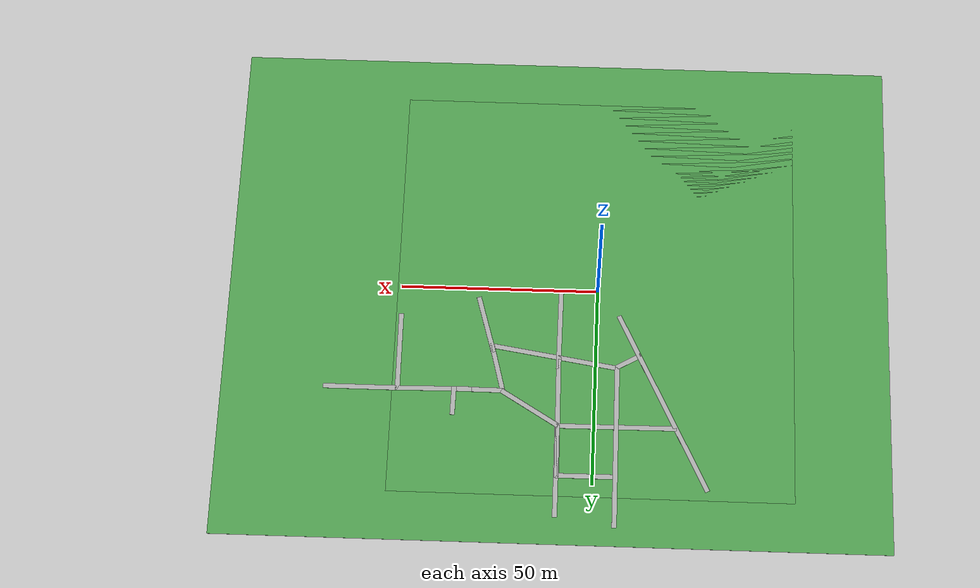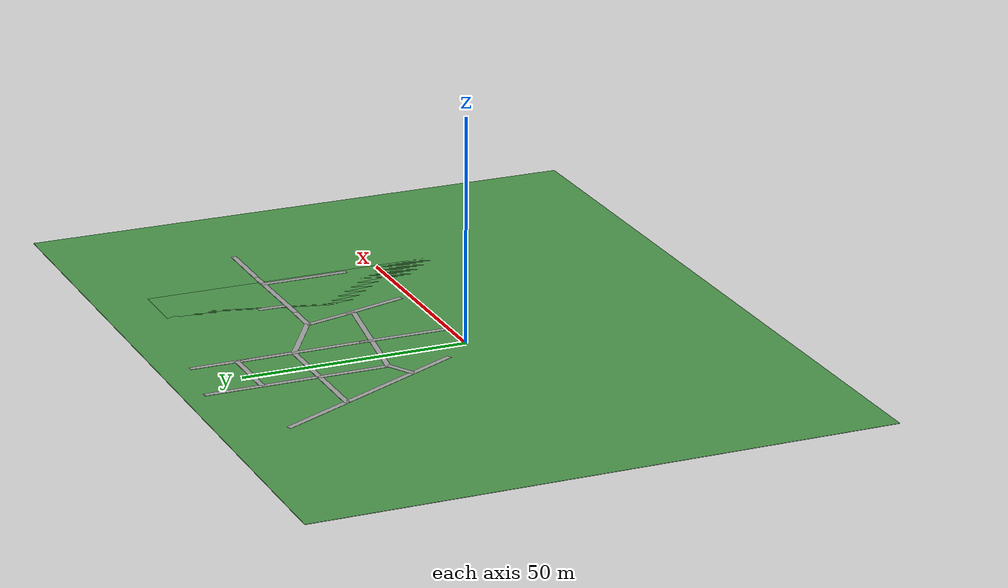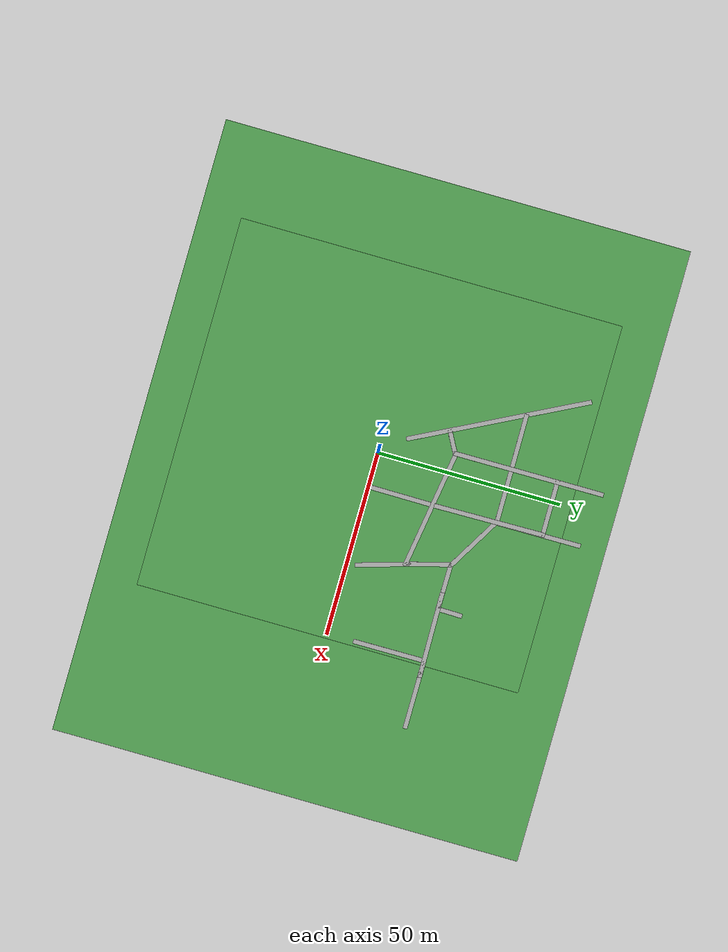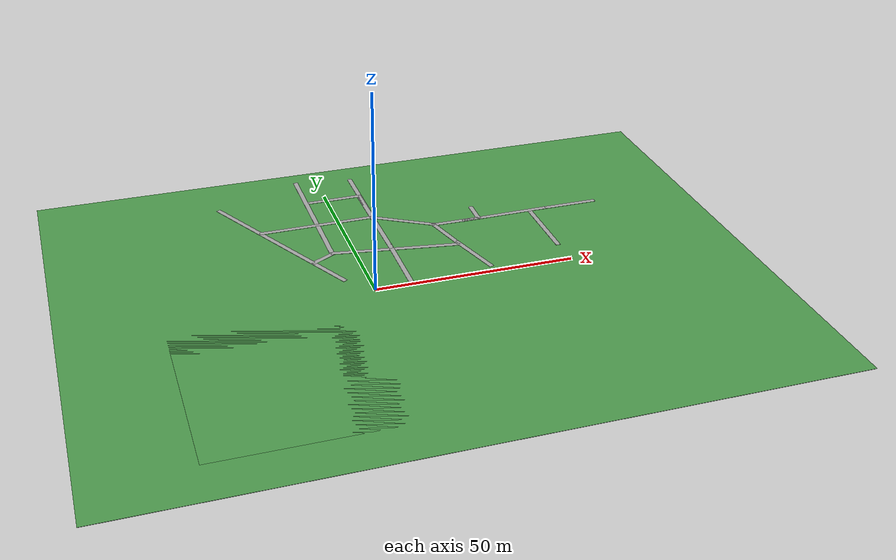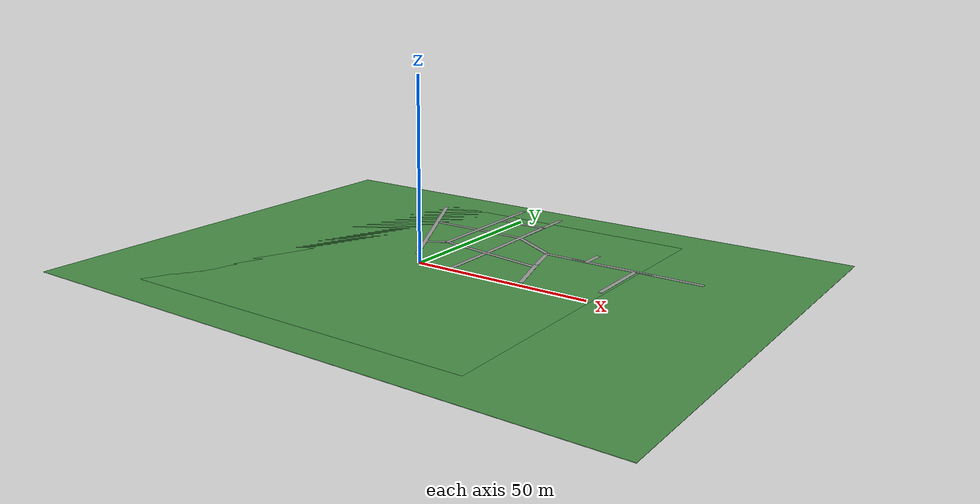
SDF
<?xml version="1.0" ?>
<sdf version="1.8">
  <world name="campus_sidewalk">

    <!-- 1. SIMULATION PHYSICS & SYSTEM PLUGINS     -->
    <physics name="1ms" type="ignored">
      <max_step_size>0.001</max_step_size>
      <real_time_factor>1.0</real_time_factor>
    </physics>

    <plugin filename="ignition-gazebo-physics-system" name="ignition::gazebo::systems::Physics"/>
    <plugin filename="ignition-gazebo-user-commands-system" name="ignition::gazebo::systems::UserCommands"/>
    <plugin filename="ignition-gazebo-scene-broadcaster-system" name="ignition::gazebo::systems::SceneBroadcaster"/>
    <plugin filename="ignition-gazebo-sensors-system" name="ignition::gazebo::systems::Sensors">
      <render_engine>ogre2</render_engine>
    </plugin>

    <!-- 2. LIGHTING & SUN                          -->
    <light type="directional" name="sun">
      <cast_shadows>true</cast_shadows>
      <pose>0 0 10 0 0 0</pose>
      <diffuse>0.8 0.8 0.8 1</diffuse>
      <specular>0.2 0.2 0.2 1</specular>
      <attenuation>
        <range>1000</range>
        <constant>0.9</constant>
        <linear>0.01</linear>
        <quadratic>0.001</quadratic>
      </attenuation>
      <direction>-0.5 0.1 -0.9</direction>
    </light>

    <!-- 3. GRASS MODEL                             -->
    <model name="grass_network">
      <static>true</static>

      <link name="grass_patch_0">
        <pose>0.5000 0.5000 0.0 0 0 0</pose>
        <collision name="col">
          <pose>0 0 -0.0500 0 0 0</pose>
          <geometry>
            <box><size>101.0000 105.0000 0.1000</size></box>
          </geometry>
        </collision>
        <visual name="vis">
          <pose>0 0 -0.0500 0 0 0</pose>
          <geometry>
            <box><size>101.0000 105.0000 0.1000</size></box>
          </geometry>
          <material>
            <ambient>0.3 0.6 0.3 1</ambient>
            <diffuse>0.3 0.6 0.3 1</diffuse>
          </material>
          <plugin filename="ignition-gazebo-label-system" name="ignition::gazebo::systems::Label">
            <label>2</label> <!-- 2 = Grass -->
          </plugin>
        </visual>
      </link>

      <link name="grass_patch_1">
        <pose>10.0000 1.0000 0.0 0 0 0</pose>
        <collision name="col">
          <pose>0 0 -0.0500 0 0 0</pose>
          <geometry>
            <box><size>168.0000 128.0000 0.1000</size></box>
          </geometry>
        </collision>
        <visual name="vis">
          <pose>0 0 -0.0500 0 0 0</pose>
          <geometry>
            <box><size>168.0000 128.0000 0.1000</size></box>
          </geometry>
          <material>
            <ambient>0.3 0.6 0.3 1</ambient>
            <diffuse>0.3 0.6 0.3 1</diffuse>
          </material>
          <plugin filename="ignition-gazebo-label-system" name="ignition::gazebo::systems::Label">
            <label>2</label> <!-- 2 = Grass -->
          </plugin>
        </visual>
      </link>
    </model>

    <!-- 4. SIDEWALK NETWORK                        -->
    <model name="sidewalk_network">
      <static>true</static>

      <!-- Segment 0: Length 41.23m, Width 1.20m, Height 0.05m -->
      <link name="segment_0">
        <pose>-5.6014 60.4403 0.0 0 0 -1.5678</pose>
        <collision name="col">
          <pose>20.6132 0 0.0250 0 0 0</pose>
          <geometry>
            <box><size>41.2263 1.2000 0.0500</size></box>
          </geometry>
        </collision>
        <visual name="vis">
          <pose>20.6132 0 0.0250 0 0 0</pose>
          <geometry>
            <box><size>41.2263 1.2000 0.0500</size></box>
          </geometry>
          <material>
            <ambient>0.65 0.65 0.65 1</ambient>
            <diffuse>0.65 0.65 0.65 1</diffuse>
          </material>
          <plugin filename="ignition-gazebo-label-system" name="ignition::gazebo::systems::Label">
            <label>1</label> <!-- 1 = Sidewalk -->
          </plugin>
        </visual>
      </link>

      <!-- Segment 1: Length 15.27m, Width 1.20m, Height 0.05m -->
      <link name="segment_1">
        <pose>9.2277 47.8294 0.0 0 0 -3.1362</pose>
        <collision name="col">
          <pose>7.6343 0 0.0250 0 0 0</pose>
          <geometry>
            <box><size>15.2686 1.2000 0.0500</size></box>
          </geometry>
        </collision>
        <visual name="vis">
          <pose>7.6343 0 0.0250 0 0 0</pose>
          <geometry>
            <box><size>15.2686 1.2000 0.0500</size></box>
          </geometry>
          <material>
            <ambient>0.65 0.65 0.65 1</ambient>
            <diffuse>0.65 0.65 0.65 1</diffuse>
          </material>
          <plugin filename="ignition-gazebo-label-system" name="ignition::gazebo::systems::Label">
            <label>1</label> <!-- 1 = Sidewalk -->
          </plugin>
        </visual>
      </link>

      <!-- Segment 2: Length 30.36m, Width 1.20m, Height 0.05m -->
      <link name="segment_2">
        <pose>8.9333 48.3628 0.0 0 0 -1.5577</pose>
        <collision name="col">
          <pose>15.1783 0 0.0250 0 0 0</pose>
          <geometry>
            <box><size>30.3565 1.2000 0.0500</size></box>
          </geometry>
        </collision>
        <visual name="vis">
          <pose>15.1783 0 0.0250 0 0 0</pose>
          <geometry>
            <box><size>30.3565 1.2000 0.0500</size></box>
          </geometry>
          <material>
            <ambient>0.65 0.65 0.65 1</ambient>
            <diffuse>0.65 0.65 0.65 1</diffuse>
          </material>
          <plugin filename="ignition-gazebo-label-system" name="ignition::gazebo::systems::Label">
            <label>1</label> <!-- 1 = Sidewalk -->
          </plugin>
        </visual>
      </link>

      <!-- Segment 3: Length 30.23m, Width 1.20m, Height 0.05m -->
      <link name="segment_3">
        <pose>-20.6489 35.0388 0.0 0 0 0.0066</pose>
        <collision name="col">
          <pose>15.1145 0 0.0250 0 0 0</pose>
          <geometry>
            <box><size>30.2290 1.2000 0.0500</size></box>
          </geometry>
        </collision>
        <visual name="vis">
          <pose>15.1145 0 0.0250 0 0 0</pose>
          <geometry>
            <box><size>30.2290 1.2000 0.0500</size></box>
          </geometry>
          <material>
            <ambient>0.65 0.65 0.65 1</ambient>
            <diffuse>0.65 0.65 0.65 1</diffuse>
          </material>
          <plugin filename="ignition-gazebo-label-system" name="ignition::gazebo::systems::Label">
            <label>1</label> <!-- 1 = Sidewalk -->
          </plugin>
        </visual>
      </link>

      <!-- Segment 4: Length 16.76m, Width 1.20m, Height 0.05m -->
      <link name="segment_4">
        <pose>23.5004 26.5868 0.0 0 0 2.6063</pose>
        <collision name="col">
          <pose>8.3817 0 0.0250 0 0 0</pose>
          <geometry>
            <box><size>16.7633 1.2000 0.0500</size></box>
          </geometry>
        </collision>
        <visual name="vis">
          <pose>8.3817 0 0.0250 0 0 0</pose>
          <geometry>
            <box><size>16.7633 1.2000 0.0500</size></box>
          </geometry>
          <material>
            <ambient>0.65 0.65 0.65 1</ambient>
            <diffuse>0.65 0.65 0.65 1</diffuse>
          </material>
          <plugin filename="ignition-gazebo-label-system" name="ignition::gazebo::systems::Label">
            <label>1</label> <!-- 1 = Sidewalk -->
          </plugin>
        </visual>
      </link>

      <!-- Segment 5: Length 23.33m, Width 1.20m, Height 0.05m -->
      <link name="segment_5">
        <pose>9.0755 58.2587 0.0 0 0 -1.5657</pose>
        <collision name="col">
          <pose>11.6654 0 0.0250 0 0 0</pose>
          <geometry>
            <box><size>23.3308 1.2000 0.0500</size></box>
          </geometry>
        </collision>
        <visual name="vis">
          <pose>11.6654 0 0.0250 0 0 0</pose>
          <geometry>
            <box><size>23.3308 1.2000 0.0500</size></box>
          </geometry>
          <material>
            <ambient>0.65 0.65 0.65 1</ambient>
            <diffuse>0.65 0.65 0.65 1</diffuse>
          </material>
          <plugin filename="ignition-gazebo-label-system" name="ignition::gazebo::systems::Label">
            <label>1</label> <!-- 1 = Sidewalk -->
          </plugin>
        </visual>
      </link>

      <!-- Segment 6: Length 12.60m, Width 1.20m, Height 0.05m -->
      <link name="segment_6">
        <pose>26.3336 14.8002 0.0 0 0 1.8339</pose>
        <collision name="col">
          <pose>6.3010 0 0.0250 0 0 0</pose>
          <geometry>
            <box><size>12.6020 1.2000 0.0500</size></box>
          </geometry>
        </collision>
        <visual name="vis">
          <pose>6.3010 0 0.0250 0 0 0</pose>
          <geometry>
            <box><size>12.6020 1.2000 0.0500</size></box>
          </geometry>
          <material>
            <ambient>0.65 0.65 0.65 1</ambient>
            <diffuse>0.65 0.65 0.65 1</diffuse>
          </material>
          <plugin filename="ignition-gazebo-label-system" name="ignition::gazebo::systems::Label">
            <label>1</label> <!-- 1 = Sidewalk -->
          </plugin>
        </visual>
      </link>

      <!-- Segment 7: Length 12.98m, Width 1.20m, Height 0.05m -->
      <link name="segment_7">
        <pose>35.7286 26.5226 0.0 0 0 3.1377</pose>
        <collision name="col">
          <pose>6.4914 0 0.0250 0 0 0</pose>
          <geometry>
            <box><size>12.9828 1.2000 0.0500</size></box>
          </geometry>
        </collision>
        <visual name="vis">
          <pose>6.4914 0 0.0250 0 0 0</pose>
          <geometry>
            <box><size>12.9828 1.2000 0.0500</size></box>
          </geometry>
          <material>
            <ambient>0.65 0.65 0.65 1</ambient>
            <diffuse>0.65 0.65 0.65 1</diffuse>
          </material>
          <plugin filename="ignition-gazebo-label-system" name="ignition::gazebo::systems::Label">
            <label>1</label> <!-- 1 = Sidewalk -->
          </plugin>
        </visual>
      </link>

      <!-- Segment 8: Length 50.10m, Width 1.20m, Height 0.05m -->
      <link name="segment_8">
        <pose>-28.4789 50.7147 0.0 0 0 -1.0971</pose>
        <collision name="col">
          <pose>25.0517 0 0.0250 0 0 0</pose>
          <geometry>
            <box><size>50.1035 1.2000 0.0500</size></box>
          </geometry>
        </collision>
        <visual name="vis">
          <pose>25.0517 0 0.0250 0 0 0</pose>
          <geometry>
            <box><size>50.1035 1.2000 0.0500</size></box>
          </geometry>
          <material>
            <ambient>0.65 0.65 0.65 1</ambient>
            <diffuse>0.65 0.65 0.65 1</diffuse>
          </material>
          <plugin filename="ignition-gazebo-label-system" name="ignition::gazebo::systems::Label">
            <label>1</label> <!-- 1 = Sidewalk -->
          </plugin>
        </visual>
      </link>

      <!-- Segment 9: Length 7.04m, Width 1.20m, Height 0.05m -->
      <link name="segment_9">
        <pose>-11.3637 16.3647 0.0 0 0 0.5021</pose>
        <collision name="col">
          <pose>3.5225 0 0.0250 0 0 0</pose>
          <geometry>
            <box><size>7.0449 1.2000 0.0500</size></box>
          </geometry>
        </collision>
        <visual name="vis">
          <pose>3.5225 0 0.0250 0 0 0</pose>
          <geometry>
            <box><size>7.0449 1.2000 0.0500</size></box>
          </geometry>
          <material>
            <ambient>0.65 0.65 0.65 1</ambient>
            <diffuse>0.65 0.65 0.65 1</diffuse>
          </material>
          <plugin filename="ignition-gazebo-label-system" name="ignition::gazebo::systems::Label">
            <label>1</label> <!-- 1 = Sidewalk -->
          </plugin>
        </visual>
      </link>

      <!-- Segment 10: Length 33.05m, Width 1.20m, Height 0.05m -->
      <link name="segment_10">
        <pose>26.8123 14.8935 0.0 0 0 2.9880</pose>
        <collision name="col">
          <pose>16.5256 0 0.0250 0 0 0</pose>
          <geometry>
            <box><size>33.0512 1.2000 0.0500</size></box>
          </geometry>
        </collision>
        <visual name="vis">
          <pose>16.5256 0 0.0250 0 0 0</pose>
          <geometry>
            <box><size>33.0512 1.2000 0.0500</size></box>
          </geometry>
          <material>
            <ambient>0.65 0.65 0.65 1</ambient>
            <diffuse>0.65 0.65 0.65 1</diffuse>
          </material>
          <plugin filename="ignition-gazebo-label-system" name="ignition::gazebo::systems::Label">
            <label>1</label> <!-- 1 = Sidewalk -->
          </plugin>
        </visual>
      </link>

      <!-- Segment 11: Length 21.08m, Width 1.20m, Height 0.05m -->
      <link name="segment_11">
        <pose>9.2458 -0.6758 0.0 0 0 1.5661</pose>
        <collision name="col">
          <pose>10.5403 0 0.0250 0 0 0</pose>
          <geometry>
            <box><size>21.0805 1.2000 0.0500</size></box>
          </geometry>
        </collision>
        <visual name="vis">
          <pose>10.5403 0 0.0250 0 0 0</pose>
          <geometry>
            <box><size>21.0805 1.2000 0.0500</size></box>
          </geometry>
          <material>
            <ambient>0.65 0.65 0.65 1</ambient>
            <diffuse>0.65 0.65 0.65 1</diffuse>
          </material>
          <plugin filename="ignition-gazebo-label-system" name="ignition::gazebo::systems::Label">
            <label>1</label> <!-- 1 = Sidewalk -->
          </plugin>
        </visual>
      </link>

      <!-- Segment 12: Length 15.07m, Width 1.20m, Height 0.05m -->
      <link name="segment_12">
        <pose>30.1811 2.2212 0.0 0 0 1.8615</pose>
        <collision name="col">
          <pose>7.5348 0 0.0250 0 0 0</pose>
          <geometry>
            <box><size>15.0697 1.2000 0.0500</size></box>
          </geometry>
        </collision>
        <visual name="vis">
          <pose>7.5348 0 0.0250 0 0 0</pose>
          <geometry>
            <box><size>15.0697 1.2000 0.0500</size></box>
          </geometry>
          <material>
            <ambient>0.65 0.65 0.65 1</ambient>
            <diffuse>0.65 0.65 0.65 1</diffuse>
          </material>
          <plugin filename="ignition-gazebo-label-system" name="ignition::gazebo::systems::Label">
            <label>1</label> <!-- 1 = Sidewalk -->
          </plugin>
        </visual>
      </link>

      <!-- Segment 13: Length 7.31m, Width 1.20m, Height 0.05m -->
      <link name="segment_13">
        <pose>35.5154 33.1945 0.0 0 0 -1.5883</pose>
        <collision name="col">
          <pose>3.6559 0 0.0250 0 0 0</pose>
          <geometry>
            <box><size>7.3119 1.2000 0.0500</size></box>
          </geometry>
        </collision>
        <visual name="vis">
          <pose>3.6559 0 0.0250 0 0 0</pose>
          <geometry>
            <box><size>7.3119 1.2000 0.0500</size></box>
          </geometry>
          <material>
            <ambient>0.65 0.65 0.65 1</ambient>
            <diffuse>0.65 0.65 0.65 1</diffuse>
          </material>
          <plugin filename="ignition-gazebo-label-system" name="ignition::gazebo::systems::Label">
            <label>1</label> <!-- 1 = Sidewalk -->
          </plugin>
        </visual>
      </link>

      <!-- Segment 14: Length 23.28m, Width 1.20m, Height 0.05m -->
      <link name="segment_14">
        <pose>54.1770 26.7816 0.0 0 0 -3.1278</pose>
        <collision name="col">
          <pose>11.6406 0 0.0250 0 0 0</pose>
          <geometry>
            <box><size>23.2812 1.2000 0.0500</size></box>
          </geometry>
        </collision>
        <visual name="vis">
          <pose>11.6406 0 0.0250 0 0 0</pose>
          <geometry>
            <box><size>23.2812 1.2000 0.0500</size></box>
          </geometry>
          <material>
            <ambient>0.65 0.65 0.65 1</ambient>
            <diffuse>0.65 0.65 0.65 1</diffuse>
          </material>
          <plugin filename="ignition-gazebo-label-system" name="ignition::gazebo::systems::Label">
            <label>1</label> <!-- 1 = Sidewalk -->
          </plugin>
        </visual>
      </link>

      <!-- Segment 15: Length 20.01m, Width 1.20m, Height 0.05m -->
      <link name="segment_15">
        <pose>49.7315 7.2505 0.0 0 0 1.5765</pose>
        <collision name="col">
          <pose>10.0062 0 0.0250 0 0 0</pose>
          <geometry>
            <box><size>20.0124 1.2000 0.0500</size></box>
          </geometry>
        </collision>
        <visual name="vis">
          <pose>10.0062 0 0.0250 0 0 0</pose>
          <geometry>
            <box><size>20.0124 1.2000 0.0500</size></box>
          </geometry>
          <material>
            <ambient>0.65 0.65 0.65 1</ambient>
            <diffuse>0.65 0.65 0.65 1</diffuse>
          </material>
          <plugin filename="ignition-gazebo-label-system" name="ignition::gazebo::systems::Label">
            <label>1</label> <!-- 1 = Sidewalk -->
          </plugin>
        </visual>
      </link>

      <!-- Segment 16: Length 18.42m, Width 1.20m, Height 0.05m -->
      <link name="segment_16">
        <pose>68.2654 26.7510 0.0 0 0 3.1416</pose>
        <collision name="col">
          <pose>9.2101 0 0.0250 0 0 0</pose>
          <geometry>
            <box><size>18.4202 1.2000 0.0500</size></box>
          </geometry>
        </collision>
        <visual name="vis">
          <pose>9.2101 0 0.0250 0 0 0</pose>
          <geometry>
            <box><size>18.4202 1.2000 0.0500</size></box>
          </geometry>
          <material>
            <ambient>0.65 0.65 0.65 1</ambient>
            <diffuse>0.65 0.65 0.65 1</diffuse>
          </material>
          <plugin filename="ignition-gazebo-label-system" name="ignition::gazebo::systems::Label">
            <label>1</label> <!-- 1 = Sidewalk -->
          </plugin>
        </visual>
      </link>
    </model>

    <!-- 5. PREDEFINED SPAWN POINTS                 -->
    <!-- Waypoint: node_0 -->
    <frame name="node_0">
      <pose>-5.5700 59.7900 0.1000 0.0000 0.0000 -1.5965</pose>
    </frame>

    <!-- Waypoint: node_5 -->
    <frame name="node_5">
      <pose>-28.2100 50.0800 0.1000 0.0000 0.0000 -1.0912</pose>
    </frame>

    <!-- Waypoint: node_1 -->
    <frame name="node_1">
      <pose>-5.5700 48.0000 0.1000 0.0000 0.0000 0.0000</pose>
    </frame>

    <!-- Waypoint: node_2 -->
    <frame name="node_2">
      <pose>9.1000 57.5500 0.1000 0.0000 0.0000 -1.5668</pose>
    </frame>

    <!-- Waypoint: node_3 -->
    <frame name="node_3">
      <pose>9.1300 47.7300 0.1000 0.0000 0.0000 -1.5668</pose>
    </frame>

    <!-- Waypoint: node_4 -->
    <frame name="node_4">
      <pose>9.1300 34.8600 0.1000 0.0000 0.0000 -1.5668</pose>
    </frame>

    <!-- Waypoint: node_6 -->
    <frame name="node_6">
      <pose>-5.5400 35.1400 0.1000 0.0000 0.0000 -1.5668</pose>
    </frame>

    <!-- Waypoint: node_9 -->
    <frame name="node_9">
      <pose>-5.2800 19.6299 0.1000 0.0000 0.0000 -0.0656</pose>
    </frame>

    <!-- Waypoint: node_7 -->
    <frame name="node_7">
      <pose>-20.2400 34.8100 0.1000 0.0000 0.0000 -1.2017</pose>
    </frame>

    <!-- Waypoint: node_8 -->
    <frame name="node_8">
      <pose>-10.9200 16.5500 0.1000 0.0000 0.0000 -1.1807</pose>
    </frame>

    <!-- Waypoint: node_14 -->
    <frame name="node_14">
      <pose>26.1495 15.2000 0.1000 0.0000 0.0000 1.8968</pose>
    </frame>

    <!-- Waypoint: node_10 -->
    <frame name="node_10">
      <pose>9.3700 17.4300 0.1000 0.0000 0.0000 3.0768</pose>
    </frame>

    <!-- Waypoint: node_11 -->
    <frame name="node_11">
      <pose>-5.8800 6.5300 0.1000 0.0000 0.0000 2.1598</pose>
    </frame>

    <!-- Waypoint: node_12 -->
    <frame name="node_12">
      <pose>9.2200 -0.1300 0.1000 0.0000 0.0000 1.5404</pose>
    </frame>

    <!-- Waypoint: node_13 -->
    <frame name="node_13">
      <pose>30.0800 2.8900 0.1000 0.0000 0.0000 1.8968</pose>
    </frame>

    <!-- Waypoint: node_20 -->
    <frame name="node_20">
      <pose>49.7700 7.7200 0.1000 0.0000 0.0000 1.5818</pose>
    </frame>

    <!-- Waypoint: node_15 -->
    <frame name="node_15">
      <pose>23.2900 26.6600 0.1000 0.0000 0.0000 -0.2222</pose>
    </frame>

    <!-- Waypoint: node_16 -->
    <frame name="node_16">
      <pose>35.5500 26.5600 0.1000 0.0000 0.0000 -0.0251</pose>
    </frame>

    <!-- Waypoint: node_17 -->
    <frame name="node_17">
      <pose>35.6100 32.6500 0.1000 0.0000 0.0000 -1.6506</pose>
    </frame>

    <!-- Waypoint: node_18 -->
    <frame name="node_18">
      <pose>49.5800 26.7200 0.1000 0.0000 0.0000 -3.1287</pose>
    </frame>

    <!-- Waypoint: node_19 -->
    <frame name="node_19">
      <pose>67.5800 26.7700 0.1000 0.0000 0.0000 -3.1287</pose>
    </frame>

  </world>
</sdf>
